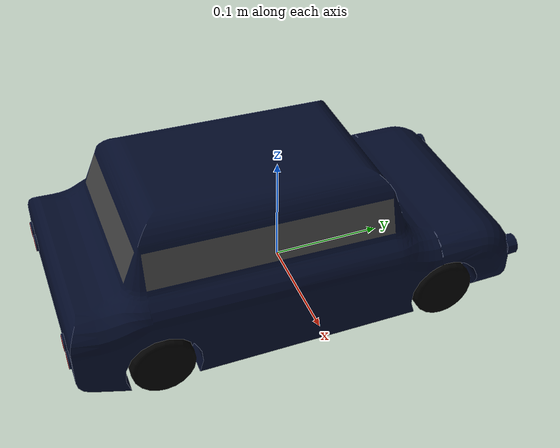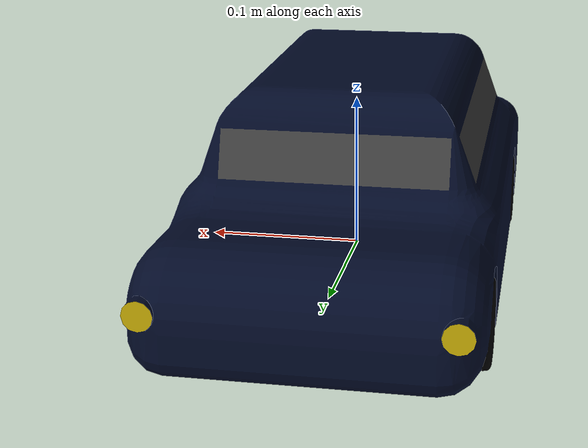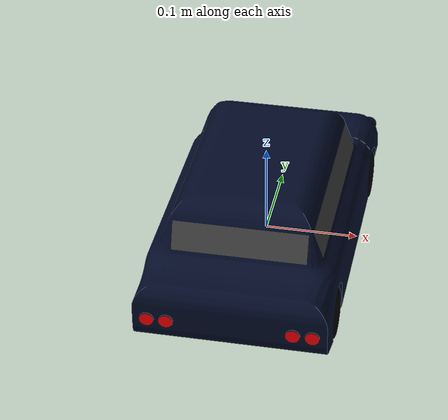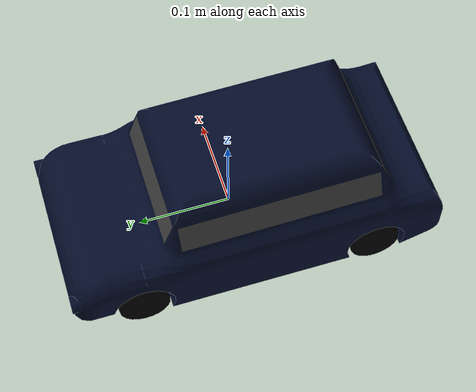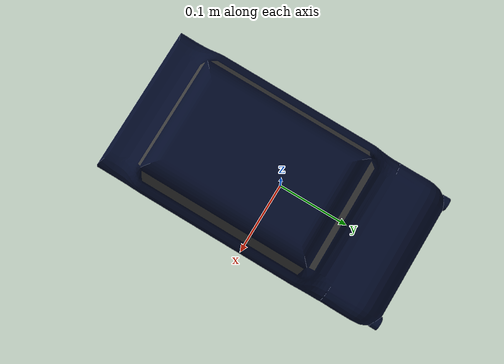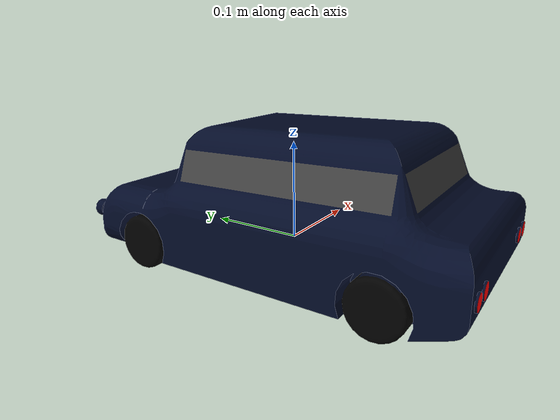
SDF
<?xml version='1.0'?>
<sdf version='1.6'>
  <model name='roscar_auto_v1.SLDPRT'>
    <link name='roscar_auto_v1'>
      <pose frame=''>0 0 0 0 -0 0</pose>
      <inertial>
        <pose frame=''>0 -0.01768 0.039509 0 -0 0</pose>
        <mass>7.7376</mass>
        <inertia>
          <ixx>0.089072</ixx>
          <ixy>1.0466e-07</ixy>
          <ixz>-5.6325e-08</ixz>
          <iyy>0.032387</iyy>
          <iyz>-0.0038544</iyz>
          <izz>0.10172</izz>
        </inertia>
      </inertial>
      <collision name='roscar_auto_v1_collision'>
        <pose frame=''>0 0 0 1.5708 -0 0</pose>
        <geometry>
          <mesh>
            <scale>1 1 1</scale>
            <uri>model://roscar_auto_v1/meshes/roscar_auto_v1.dae</uri>
          </mesh>
        </geometry>
      </collision>
      <visual name='roscar_auto_v1_visual'>
        <pose frame=''>0 0 0 1.5708 -0 0</pose>
        <geometry>
          <mesh>
            <scale>1 1 1</scale>
            <uri>model://roscar_auto_v1/meshes/roscar_auto_v1.dae</uri>
          </mesh>
        </geometry>
      </visual>
    </link>
  </model>
</sdf>
